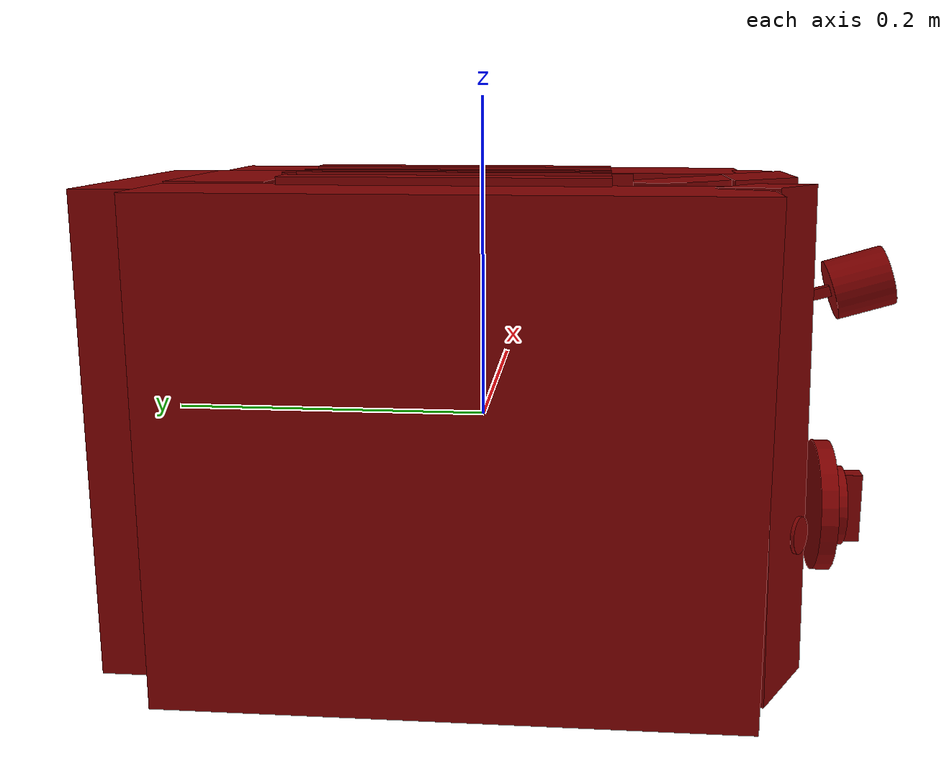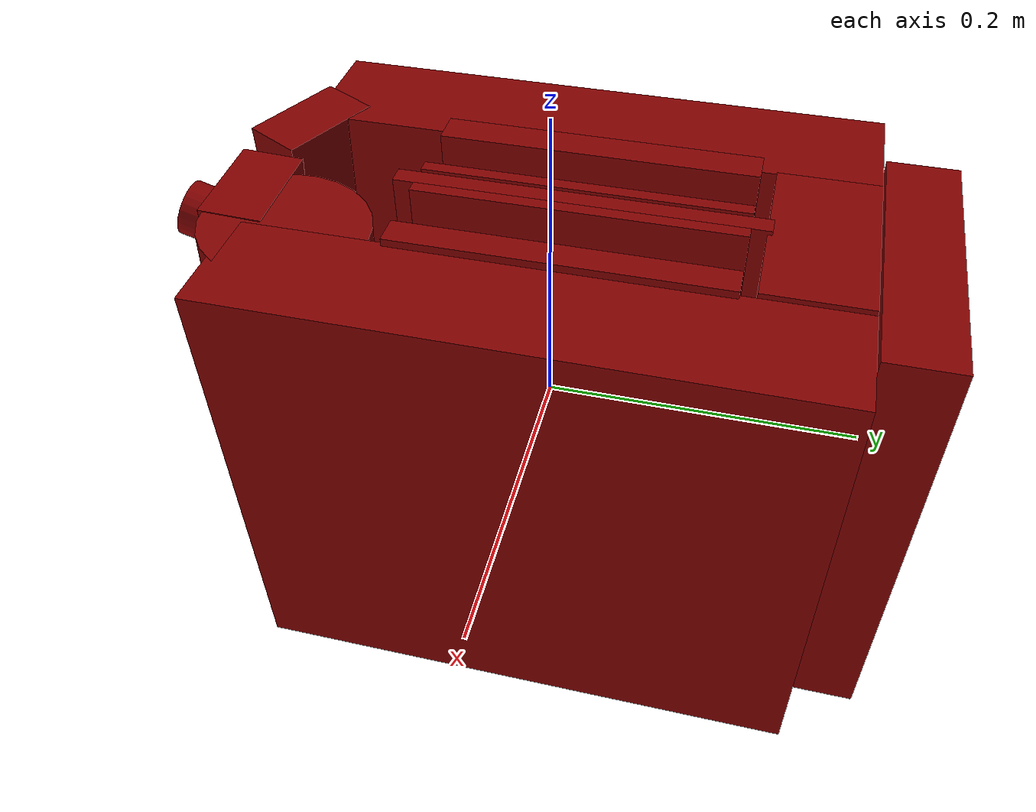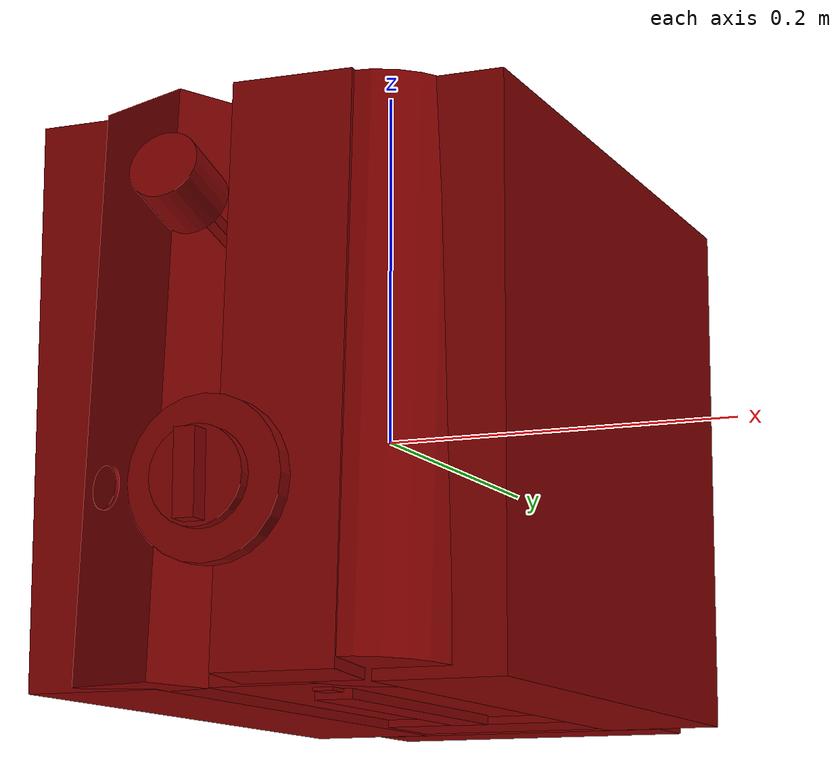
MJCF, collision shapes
<?xml version='1.0' encoding='UTF-8'?>
<mujoco model="model">
  <option timestep="0.002" gravity="0.0 0.0 -9.81"/>
  <compiler angle="radian"/>
  <asset>
    <mesh file="visuals/button_cancel.obj" name="button_cancel_vis"/>
    <mesh file="visuals/knob_doneness.obj" name="knob_doneness_vis"/>
    <mesh file="visuals/lever.obj" name="lever_vis"/>
    <mesh file="visuals/Body001.obj" name="Body001_vis"/>
    <mesh file="visuals/Body002.obj" name="Body002_vis"/>
    <texture file="visuals/T_BC001.png" name="Body001_material" type="2d"/>
    <material name="Body001_material" rgba="1 1 1 1.0" texture="Body001_material" shininess="0.141421377658844" specular="0.3103448502657381"/>
    <texture file="visuals/T_BC001.png" name="button_cancel_material" type="2d"/>
    <material name="button_cancel_material" rgba="1 1 1 1.0" texture="button_cancel_material" shininess="0.141421377658844" specular="0.3103448502657381"/>
    <texture file="visuals/T_BC001.png" name="knob_doneness_material" type="2d"/>
    <material name="knob_doneness_material" rgba="1 1 1 1.0" texture="knob_doneness_material" shininess="0.141421377658844" specular="0.3103448502657381"/>
    <texture file="visuals/T_BC001.png" name="lever_material" type="2d"/>
    <material name="lever_material" rgba="1 1 1 1.0" texture="lever_material" shininess="0.141421377658844" specular="0.3103448502657381"/>
    <texture file="visuals/T_BC001.png" name="Body002_material" type="2d"/>
    <material name="Body002_material" rgba="1 1 1 1.0" texture="Body002_material" shininess="0.141421377658844" specular="2"/>
  </asset>
  <default>
    <default class="visual">
      <geom conaffinity="0" contype="0" group="1" type="mesh"/>
    </default>
    <default class="collision_1">
      <geom group="0" rgba="0.5 0 0 0.5" solref="0.004 1" solimp="0.998 0.998 0.001"/>
    </default>
    <default class="collision_2">
      <geom group="0" rgba="0.5 0 0 0.5" solref="0.004 1" solimp="0.998 0.998 0.001"/>
    </default>
    <default class="collision_3">
      <geom group="0" rgba="0.5 0 0 0.5" solref="0.004 1" solimp="0.998 0.998 0.001"/>
    </default>
    <default class="collision_4">
      <geom group="0" rgba="0.5 0 0 0.5" solref="0.004 1" solimp="0.998 0.998 0.001"/>
    </default>
    <default class="collision_5">
      <geom group="0" rgba="0.5 0 0 0.5" solref="0.004 1" solimp="0.998 0.998 0.001"/>
    </default>
    <default class="spawn">
      <geom group="0" rgba="1 1 1 0.5" contype="0" conaffinity="0"/>
      <site group="0" rgba="1 1 1 0.5"/>
    </default>
    <default class="region">
      <geom group="1" conaffinity="0" contype="0" rgba="0 1 0 0" mass="0"/>
    </default>
  </default>
  <worldbody>
    <body>
      <body name="object">
        <geom mesh="Body001_vis" type="mesh" solimp="0.998 0.998 0.001" solref="0.001 1" friction="0.95 0.3 0.1" class="visual" material="Body001_material"/>
        <geom type="box" pos="0.09732410 0.00893717 0.00048207" size="0.03477196767926216 0.1749858260154724 0.14931738376617432" quat="1.0 0.0 0.0 0.0" class="collision_1"/>
        <geom type="cylinder" pos="-0.00192204 -0.21454123 -0.05431648" size="0.04117937758564949 0.00521208718419075" quat="0.7071068286895752 0.7071067690849304 0.0 0.0" class="collision_1"/>
        <geom type="box" pos="0.00250967 0.15356895 0.00146957" size="0.05729693919420242 0.030353715643286705 0.14931471645832062" quat="1.0 0.0 0.0 0.0" class="collision_1"/>
        <geom type="box" pos="0.00452330 0.20723274 -0.00026635" size="0.09067270904779434 0.02142288349568844 0.14856651425361633" quat="1.0 0.0 0.0 0.0" class="collision_1"/>
        <geom type="box" pos="0.02803706 -0.17950057 0.00177675" size="0.03240758180618286 0.018605414777994156 0.14931736886501312" quat="0.9995090961456299 -0.02830427885055542 -0.0002549346536397934 0.013431264087557793" class="collision_1"/>
        <geom type="box" pos="0.00250967 0.01708563 -0.01390307" size="0.010774740017950535 0.09621493518352509 0.1349322497844696" quat="1.0 0.0 0.0 0.0" class="collision_1"/>
        <geom type="box" pos="-0.09100933 0.00893717 0.00048207" size="0.03647923842072487 0.1749858260154724 0.14931738376617432" quat="1.0 0.0 0.0 0.0" class="collision_1"/>
        <geom type="box" pos="0.00250967 0.01701125 0.00398675" size="0.005677978042513132 0.10907050967216492 0.14931704103946686" quat="1.0 0.0 0.0 0.0" class="collision_1"/>
        <geom type="box" pos="0.00250982 0.01708563 -0.13570678" size="0.08502741158008575 0.12783825397491455 0.0076886191964149475" quat="1.0 0.0 0.0 0.0" class="collision_1"/>
        <geom type="cylinder" pos="0.05711098 -0.14712908 0.00244447" size="0.04844741150736809 0.14617568254470825" quat="0.9995211362838745 -0.030944235622882843 -6.871000573590101e-18 -9.757854410176567e-25" class="collision_1"/>
        <geom type="box" pos="-0.05606480 -0.16852257 0.00090679" size="0.03240757808089256 0.018605414777994156 0.14931738376617432" quat="0.9727725982666016 -0.009991034865379333 0.015632834285497665 -0.23101787269115448" class="collision_1"/>
        <body name="button_cancel">
          <joint axis="0.45336243510246277 0.8913262486457825 0.0" pos="-0.06871617 -0.18776399 -0.05051228" limited="true" name="button_cancel_joint" range="0.0 0.001" type="slide" damping="1" frictionloss="1" armature=".01" stiffness="4" springref="-1"/>
          <geom mesh="button_cancel_vis" type="mesh" solimp="0.998 0.998 0.001" solref="0.001 1" friction="0.95 0.3 0.1" class="visual" material="button_cancel_material"/>
          <geom class="collision_2" type="cylinder" pos="-0.07081448 -0.19153065 -0.05045508" size="0.01105516403913498 0.0011194683611392975" quat="0.6980993151664734 0.6687564849853516 -0.17713183164596558 -0.18451668322086334" name="button_cancel_main"/>
        </body>
        <body name="knob_doneness">
          <joint axis="0.0 1.0 0.0" pos="-0.00191902 -0.23042404 -0.05431664" limited="true" name="knob_doneness_joint" range="0.0 5.235987755982989" type="hinge" damping="0.05" armature="1" frictionloss="0.75"/>
          <geom mesh="knob_doneness_vis" type="mesh" solimp="0.998 0.998 0.001" solref="0.001 1" friction="0.95 0.3 0.1" class="visual" material="knob_doneness_material"/>
          <geom type="cylinder" pos="-0.00199549 -0.22460148 -0.05428186" size="0.024918224662542343 0.003509973408654332" quat="0.7071067094802856 0.7071068286895752 0.0 0.0" class="collision_3" friction="100 0.5 0.01"/>
          <geom class="collision_3" type="box" pos="-0.00177662 -0.23423076 -0.05468834" size="0.005658698733896017 0.005658698733896017 0.021840764209628105" quat="1.0 0.0 0.0 0.0" name="knob_doneness_main" friction="100 0.5 0.01"/>
        </body>
        <body name="lever">
          <joint axis="0.0 0.0 -1.0" pos="-0.01300358 -0.20655463 0.08914229" limited="true" name="lever_joint" range="0.0 0.06" type="slide" damping="1" frictionloss="1" armature=".1" stiffness="3" springref="-0.5"/>
          <geom class="region" name="reg_slotL" type="box" pos="-0.0271503 0.019100975 0.15187272" size="0.01454397 0.099721275 0.07599996"/>
          <geom class="region" name="reg_slotR" type="box" pos="0.03212024 0.019100975 0.15187272" size="0.014354859999999997 0.099721275 0.07599996"/>
          <geom mesh="lever_vis" type="mesh" solimp="0.998 0.998 0.001" solref="0.001 1" friction="0.95 0.3 0.1" class="visual" material="lever_material"/>
          <geom type="box" pos="-0.01262649 -0.19255361 0.07999948" size="0.0032166733872145414 0.02023816481232643 0.0032166740857064724" quat="0.991601288318634 -0.12933264672756195 2.385926210856731e-17 -5.251995115816093e-19" class="collision_4"/>
          <geom class="collision_4" type="box" pos="0.03217371 0.01879042 0.07452337" size="0.01255000103265047 0.09707515686750412 0.0016587881837040186" quat="1.0 0.0 0.0 0.0" name="slotR_floor"/>
          <geom class="collision_4" type="box" pos="-0.02714282 0.01636250 0.07452337" size="0.012550000101327896 0.09707564860582352 0.0016587915597483516" quat="1.0 0.0 0.0 0.0" name="slotL_floor"/>
          <geom class="collision_4" type="cylinder" pos="-0.01339210 -0.22800698 0.09016453" size="0.018117601051926613 0.017394397407770157" quat="0.5981364250183105 -0.8013942837715149 -1.7794529036411425e-16 -6.396756329023212e-24" name="lever_handle"/>
        </body>
        <body name="Body002">
          <geom mesh="Body002_vis" type="mesh" solimp="0.998 0.998 0.001" solref="0.001 1" friction="0.95 0.3 0.1" class="visual" material="Body002_material"/>
          <geom type="box" pos="-0.05239585 0.01778551 0.05836993" size="0.010541500523686409 0.09654990583658218 0.09608542919158936" quat="1.0 0.0 0.0 0.0" class="collision_5"/>
          <geom type="box" pos="-0.00838790 0.01778551 0.05836993" size="0.003973815590143204 0.09654990583658218 0.09608542919158936" quat="1.0 0.0 0.0 0.0" class="collision_5"/>
          <geom type="box" pos="0.01355266 0.01778551 0.05836993" size="0.003973815590143204 0.09654990583658218 0.09608542919158936" quat="1.0 0.0 0.0 0.0" class="collision_5"/>
          <geom type="box" pos="0.05675605 0.01778551 0.05836993" size="0.008824016898870468 0.09654990583658218 0.09608542919158936" quat="1.0 0.0 0.0 0.0" class="collision_5"/>
        </body>
        <geom class="region" name="reg_main" type="box" pos="0.0 0.016673834999999998 0.0" size="0.14681436 0.229645805 0.15218852"/>
      </body>
    </body>
  </worldbody>
  <actuator>
    <motor name="button_cancel_joint_actuator" joint="button_cancel_joint" gear="0.5"/>
    <motor name="knob_doneness_joint_actuator" joint="knob_doneness_joint" gear="10"/>
    <motor name="lever_joint_actuator" joint="lever_joint" gear="3"/>
  </actuator>
</mujoco>
